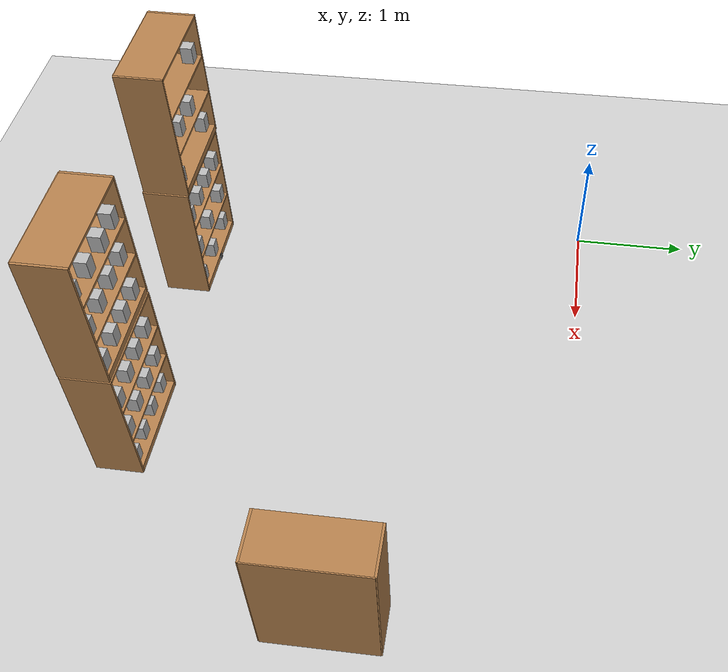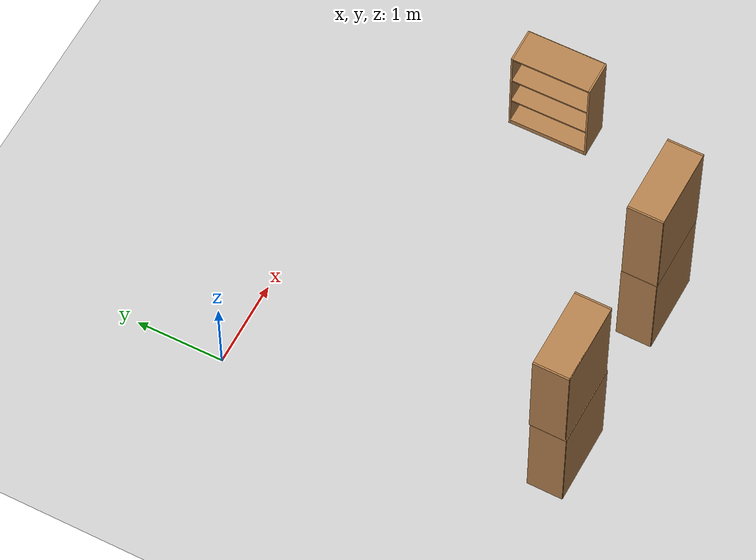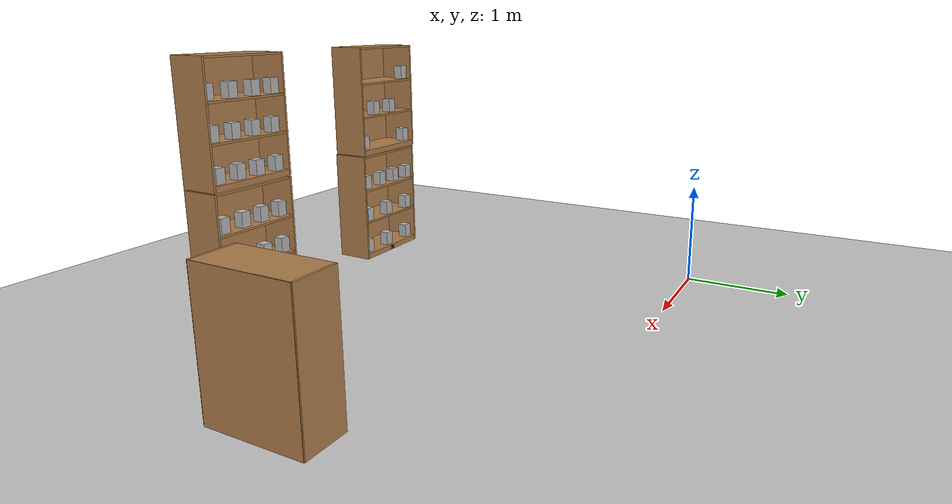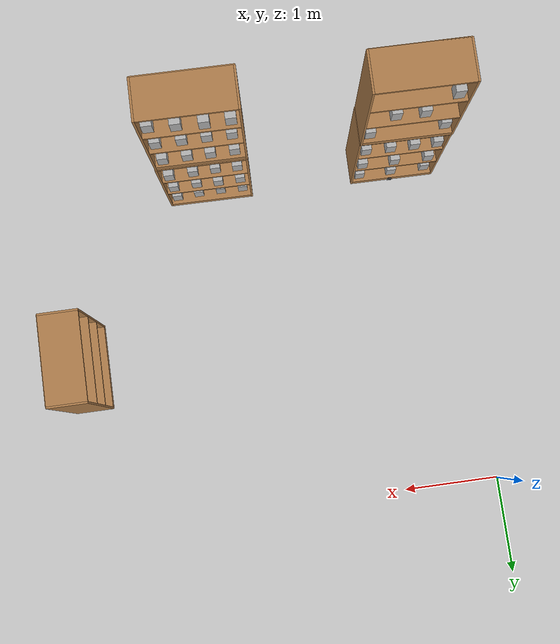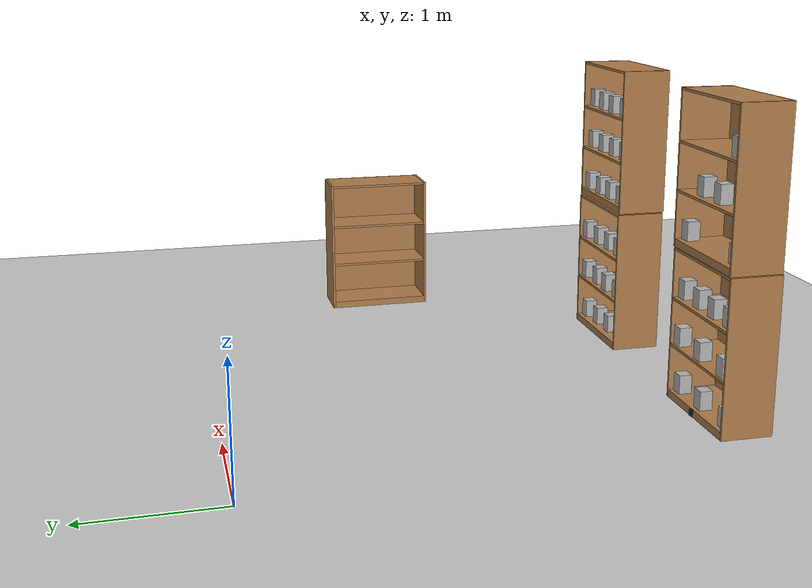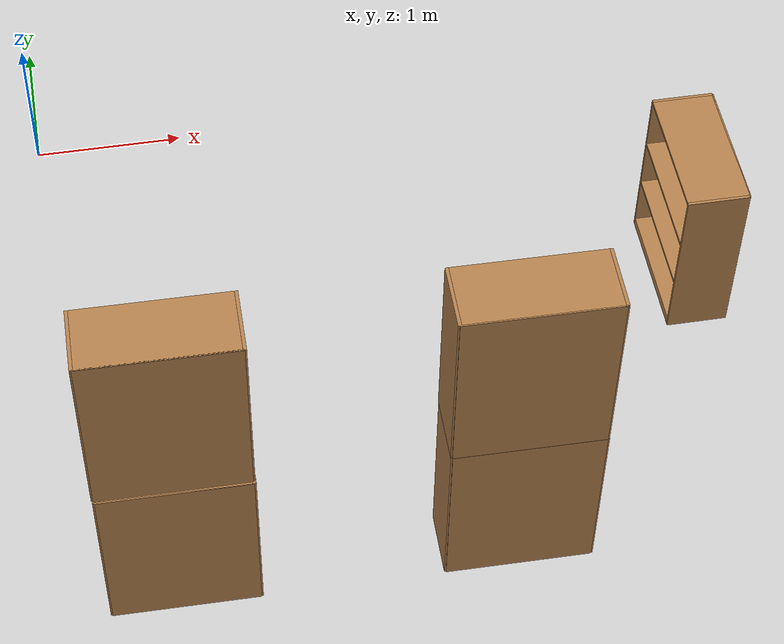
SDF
<sdf version="1.7">
 <world name="default">
  <model name="ground_plane">
   <static>1</static>
   <link name="link">
    <collision name="collision">
     <geometry><plane><normal>0 0 1</normal><size>100 100</size></plane></geometry>
     <surface><friction><ode><mu>100</mu><mu2>50</mu2></ode></friction></surface>
    </collision>
    <visual name="visual">
     <cast_shadows>0</cast_shadows>
     <geometry><plane><normal>0 0 1</normal><size>100 100</size></plane></geometry>
     <material>
      <script><uri>file://media/materials/scripts/gazebo.material</uri><name>Gazebo/Grey</name></script>
     </material>
    </visual>
   </link>
  </model>
  <model name="bookshelf_5">
   <static>1</static>
   <link name="link">
    <inertial><mass>1</mass></inertial>
    <collision name="back">
     <pose>0 0.005 0.6 0 -0 0</pose>
     <geometry><box><size>0.9 0.01 1.2</size></box></geometry>
    </collision>
    <visual name="visual1">
     <pose>0 0.005 0.6 0 -0 0</pose>
     <geometry><box><size>0.9 0.01 1.2</size></box></geometry>
     <material>
      <script><uri>file://media/materials/scripts/gazebo.material</uri><name>Gazebo/Wood</name></script>
     </material>
    </visual>
    <collision name="left_side">
     <pose>0.45 -0.195 0.6 0 -0 0</pose>
     <geometry><box><size>0.02 0.4 1.2</size></box></geometry>
    </collision>
    <visual name="visual2">
     <pose>0.45 -0.195 0.6 0 -0 0</pose>
     <geometry><box><size>0.02 0.4 1.2</size></box></geometry>
     <material>
      <script><uri>file://media/materials/scripts/gazebo.material</uri><name>Gazebo/Wood</name></script>
     </material>
    </visual>
    <collision name="right_side">
     <pose>-0.45 -0.195 0.6 0 -0 0</pose>
     <geometry><box><size>0.02 0.4 1.2</size></box></geometry>
    </collision>
    <visual name="visual3">
     <pose>-0.45 -0.195 0.6 0 -0 0</pose>
     <geometry><box><size>0.02 0.4 1.2</size></box></geometry>
     <material>
      <script><uri>file://media/materials/scripts/gazebo.material</uri><name>Gazebo/Wood</name></script>
     </material>
    </visual>
    <collision name="bottom">
     <pose>0 -0.195 0.03 0 -0 0</pose>
     <geometry><box><size>0.88 0.4 0.06</size></box></geometry>
    </collision>
    <visual name="visual4">
     <pose>0 -0.195 0.03 0 -0 0</pose>
     <geometry><box><size>0.88 0.4 0.06</size></box></geometry>
     <material>
      <script><uri>file://media/materials/scripts/gazebo.material</uri><name>Gazebo/Wood</name></script>
     </material>
    </visual>
    <collision name="top">
     <pose>0 -0.195 1.19 0 -0 0</pose>
     <geometry><box><size>0.88 0.4 0.02</size></box></geometry>
    </collision>
    <visual name="visual5">
     <pose>0 -0.195 1.19 0 -0 0</pose>
     <geometry><box><size>0.88 0.4 0.02</size></box></geometry>
     <material>
      <script><uri>file://media/materials/scripts/gazebo.material</uri><name>Gazebo/Wood</name></script>
     </material>
    </visual>
    <collision name="low_shelf">
     <pose>0 -0.195 0.43 0 -0 0</pose>
     <geometry><box><size>0.88 0.4 0.02</size></box></geometry>
    </collision>
    <visual name="visual6">
     <pose>0 -0.195 0.43 0 -0 0</pose>
     <geometry><box><size>0.88 0.4 0.02</size></box></geometry>
     <material>
      <script><uri>file://media/materials/scripts/gazebo.material</uri><name>Gazebo/Wood</name></script>
     </material>
    </visual>
    <collision name="high_shelf">
     <pose>0 -0.195 0.8 0 -0 0</pose>
     <geometry><box><size>0.88 0.4 0.02</size></box></geometry>
    </collision>
    <visual name="visual7">
     <pose>0 -0.195 0.8 0 -0 0</pose>
     <geometry><box><size>0.88 0.4 0.02</size></box></geometry>
     <material>
      <script><uri>file://media/materials/scripts/gazebo.material</uri><name>Gazebo/Wood</name></script>
     </material>
    </visual>
   </link>
   <pose>2.65151 -3.85953 0 0 -0 3.12955</pose>
  </model>
  <model name="bookshelf_5_clone_0">
   <static>1</static>
   <link name="link">
    <inertial><mass>1</mass></inertial>
    <collision name="back">
     <pose>0 0.005 0.6 0 -0 0</pose>
     <geometry><box><size>0.9 0.01 1.2</size></box></geometry>
    </collision>
    <visual name="visual1">
     <pose>0 0.005 0.6 0 -0 0</pose>
     <geometry><box><size>0.9 0.01 1.2</size></box></geometry>
     <material>
      <script><uri>file://media/materials/scripts/gazebo.material</uri><name>Gazebo/Wood</name></script>
     </material>
    </visual>
    <collision name="left_side">
     <pose>0.45 -0.195 0.6 0 -0 0</pose>
     <geometry><box><size>0.02 0.4 1.2</size></box></geometry>
    </collision>
    <visual name="visual2">
     <pose>0.45 -0.195 0.6 0 -0 0</pose>
     <geometry><box><size>0.02 0.4 1.2</size></box></geometry>
     <material>
      <script><uri>file://media/materials/scripts/gazebo.material</uri><name>Gazebo/Wood</name></script>
     </material>
    </visual>
    <collision name="right_side">
     <pose>-0.45 -0.195 0.6 0 -0 0</pose>
     <geometry><box><size>0.02 0.4 1.2</size></box></geometry>
    </collision>
    <visual name="visual3">
     <pose>-0.45 -0.195 0.6 0 -0 0</pose>
     <geometry><box><size>0.02 0.4 1.2</size></box></geometry>
     <material>
      <script><uri>file://media/materials/scripts/gazebo.material</uri><name>Gazebo/Wood</name></script>
     </material>
    </visual>
    <collision name="bottom">
     <pose>0 -0.195 0.03 0 -0 0</pose>
     <geometry><box><size>0.88 0.4 0.06</size></box></geometry>
    </collision>
    <visual name="visual4">
     <pose>0 -0.195 0.03 0 -0 0</pose>
     <geometry><box><size>0.88 0.4 0.06</size></box></geometry>
     <material>
      <script><uri>file://media/materials/scripts/gazebo.material</uri><name>Gazebo/Wood</name></script>
     </material>
    </visual>
    <collision name="top">
     <pose>0 -0.195 1.19 0 -0 0</pose>
     <geometry><box><size>0.88 0.4 0.02</size></box></geometry>
    </collision>
    <visual name="visual5">
     <pose>0 -0.195 1.19 0 -0 0</pose>
     <geometry><box><size>0.88 0.4 0.02</size></box></geometry>
     <material>
      <script><uri>file://media/materials/scripts/gazebo.material</uri><name>Gazebo/Wood</name></script>
     </material>
    </visual>
    <collision name="low_shelf">
     <pose>0 -0.195 0.43 0 -0 0</pose>
     <geometry><box><size>0.88 0.4 0.02</size></box></geometry>
    </collision>
    <visual name="visual6">
     <pose>0 -0.195 0.43 0 -0 0</pose>
     <geometry><box><size>0.88 0.4 0.02</size></box></geometry>
     <material>
      <script><uri>file://media/materials/scripts/gazebo.material</uri><name>Gazebo/Wood</name></script>
     </material>
    </visual>
    <collision name="high_shelf">
     <pose>0 -0.195 0.8 0 -0 0</pose>
     <geometry><box><size>0.88 0.4 0.02</size></box></geometry>
    </collision>
    <visual name="visual7">
     <pose>0 -0.195 0.8 0 -0 0</pose>
     <geometry><box><size>0.88 0.4 0.02</size></box></geometry>
     <material>
      <script><uri>file://media/materials/scripts/gazebo.material</uri><name>Gazebo/Wood</name></script>
     </material>
    </visual>
   </link>
   <pose>0.624398 -3.83719 0 0 -0 3.12955</pose>
  </model>
  <model name="bookshelf_5_clone">
   <static>1</static>
   <link name="link">
    <inertial><mass>1</mass></inertial>
    <collision name="back">
     <pose>0 0.005 0.6 0 -0 0</pose>
     <geometry><box><size>0.9 0.01 1.2</size></box></geometry>
    </collision>
    <visual name="visual1">
     <pose>0 0.005 0.6 0 -0 0</pose>
     <geometry><box><size>0.9 0.01 1.2</size></box></geometry>
     <material>
      <script><uri>file://media/materials/scripts/gazebo.material</uri><name>Gazebo/Wood</name></script>
     </material>
    </visual>
    <collision name="left_side">
     <pose>0.45 -0.195 0.6 0 -0 0</pose>
     <geometry><box><size>0.02 0.4 1.2</size></box></geometry>
    </collision>
    <visual name="visual2">
     <pose>0.45 -0.195 0.6 0 -0 0</pose>
     <geometry><box><size>0.02 0.4 1.2</size></box></geometry>
     <material>
      <script><uri>file://media/materials/scripts/gazebo.material</uri><name>Gazebo/Wood</name></script>
     </material>
    </visual>
    <collision name="right_side">
     <pose>-0.45 -0.195 0.6 0 -0 0</pose>
     <geometry><box><size>0.02 0.4 1.2</size></box></geometry>
    </collision>
    <visual name="visual3">
     <pose>-0.45 -0.195 0.6 0 -0 0</pose>
     <geometry><box><size>0.02 0.4 1.2</size></box></geometry>
     <material>
      <script><uri>file://media/materials/scripts/gazebo.material</uri><name>Gazebo/Wood</name></script>
     </material>
    </visual>
    <collision name="bottom">
     <pose>0 -0.195 0.03 0 -0 0</pose>
     <geometry><box><size>0.88 0.4 0.06</size></box></geometry>
    </collision>
    <visual name="visual4">
     <pose>0 -0.195 0.03 0 -0 0</pose>
     <geometry><box><size>0.88 0.4 0.06</size></box></geometry>
     <material>
      <script><uri>file://media/materials/scripts/gazebo.material</uri><name>Gazebo/Wood</name></script>
     </material>
    </visual>
    <collision name="top">
     <pose>0 -0.195 1.19 0 -0 0</pose>
     <geometry><box><size>0.88 0.4 0.02</size></box></geometry>
    </collision>
    <visual name="visual5">
     <pose>0 -0.195 1.19 0 -0 0</pose>
     <geometry><box><size>0.88 0.4 0.02</size></box></geometry>
     <material>
      <script><uri>file://media/materials/scripts/gazebo.material</uri><name>Gazebo/Wood</name></script>
     </material>
    </visual>
    <collision name="low_shelf">
     <pose>0 -0.195 0.43 0 -0 0</pose>
     <geometry><box><size>0.88 0.4 0.02</size></box></geometry>
    </collision>
    <visual name="visual6">
     <pose>0 -0.195 0.43 0 -0 0</pose>
     <geometry><box><size>0.88 0.4 0.02</size></box></geometry>
     <material>
      <script><uri>file://media/materials/scripts/gazebo.material</uri><name>Gazebo/Wood</name></script>
     </material>
    </visual>
    <collision name="high_shelf">
     <pose>0 -0.195 0.8 0 -0 0</pose>
     <geometry><box><size>0.88 0.4 0.02</size></box></geometry>
    </collision>
    <visual name="visual7">
     <pose>0 -0.195 0.8 0 -0 0</pose>
     <geometry><box><size>0.88 0.4 0.02</size></box></geometry>
     <material>
      <script><uri>file://media/materials/scripts/gazebo.material</uri><name>Gazebo/Wood</name></script>
     </material>
    </visual>
   </link>
   <pose>2.64795 -3.86432 1.21139 0 -0 3.12955</pose>
  </model>
  <model name="bookshelf_5_clone_clone">
   <static>1</static>
   <link name="link">
    <inertial><mass>1</mass></inertial>
    <collision name="back">
     <pose>0 0.005 0.6 0 -0 0</pose>
     <geometry><box><size>0.9 0.01 1.2</size></box></geometry>
    </collision>
    <visual name="visual1">
     <pose>0 0.005 0.6 0 -0 0</pose>
     <geometry><box><size>0.9 0.01 1.2</size></box></geometry>
     <material>
      <script><uri>file://media/materials/scripts/gazebo.material</uri><name>Gazebo/Wood</name></script>
     </material>
    </visual>
    <collision name="left_side">
     <pose>0.45 -0.195 0.6 0 -0 0</pose>
     <geometry><box><size>0.02 0.4 1.2</size></box></geometry>
    </collision>
    <visual name="visual2">
     <pose>0.45 -0.195 0.6 0 -0 0</pose>
     <geometry><box><size>0.02 0.4 1.2</size></box></geometry>
     <material>
      <script><uri>file://media/materials/scripts/gazebo.material</uri><name>Gazebo/Wood</name></script>
     </material>
    </visual>
    <collision name="right_side">
     <pose>-0.45 -0.195 0.6 0 -0 0</pose>
     <geometry><box><size>0.02 0.4 1.2</size></box></geometry>
    </collision>
    <visual name="visual3">
     <pose>-0.45 -0.195 0.6 0 -0 0</pose>
     <geometry><box><size>0.02 0.4 1.2</size></box></geometry>
     <material>
      <script><uri>file://media/materials/scripts/gazebo.material</uri><name>Gazebo/Wood</name></script>
     </material>
    </visual>
    <collision name="bottom">
     <pose>0 -0.195 0.03 0 -0 0</pose>
     <geometry><box><size>0.88 0.4 0.06</size></box></geometry>
    </collision>
    <visual name="visual4">
     <pose>0 -0.195 0.03 0 -0 0</pose>
     <geometry><box><size>0.88 0.4 0.06</size></box></geometry>
     <material>
      <script><uri>file://media/materials/scripts/gazebo.material</uri><name>Gazebo/Wood</name></script>
     </material>
    </visual>
    <collision name="top">
     <pose>0 -0.195 1.19 0 -0 0</pose>
     <geometry><box><size>0.88 0.4 0.02</size></box></geometry>
    </collision>
    <visual name="visual5">
     <pose>0 -0.195 1.19 0 -0 0</pose>
     <geometry><box><size>0.88 0.4 0.02</size></box></geometry>
     <material>
      <script><uri>file://media/materials/scripts/gazebo.material</uri><name>Gazebo/Wood</name></script>
     </material>
    </visual>
    <collision name="low_shelf">
     <pose>0 -0.195 0.43 0 -0 0</pose>
     <geometry><box><size>0.88 0.4 0.02</size></box></geometry>
    </collision>
    <visual name="visual6">
     <pose>0 -0.195 0.43 0 -0 0</pose>
     <geometry><box><size>0.88 0.4 0.02</size></box></geometry>
     <material>
      <script><uri>file://media/materials/scripts/gazebo.material</uri><name>Gazebo/Wood</name></script>
     </material>
    </visual>
    <collision name="high_shelf">
     <pose>0 -0.195 0.8 0 -0 0</pose>
     <geometry><box><size>0.88 0.4 0.02</size></box></geometry>
    </collision>
    <visual name="visual7">
     <pose>0 -0.195 0.8 0 -0 0</pose>
     <geometry><box><size>0.88 0.4 0.02</size></box></geometry>
     <material>
      <script><uri>file://media/materials/scripts/gazebo.material</uri><name>Gazebo/Wood</name></script>
     </material>
    </visual>
   </link>
   <pose>0.620317 -3.82873 1.21139 0 -0 3.12955</pose>
  </model>
  <model name="bookshelf_4_clone_clone">
   <static>1</static>
   <link name="link">
    <inertial><mass>1</mass></inertial>
    <collision name="back">
     <pose>0 0.005 0.6 0 -0 0</pose>
     <geometry><box><size>0.9 0.01 1.2</size></box></geometry>
    </collision>
    <visual name="visual1">
     <pose>0 0.005 0.6 0 -0 0</pose>
     <geometry><box><size>0.9 0.01 1.2</size></box></geometry>
     <material>
      <script><uri>file://media/materials/scripts/gazebo.material</uri><name>Gazebo/Wood</name></script>
     </material>
    </visual>
    <collision name="left_side">
     <pose>0.45 -0.195 0.6 0 -0 0</pose>
     <geometry><box><size>0.02 0.4 1.2</size></box></geometry>
    </collision>
    <visual name="visual2">
     <pose>0.45 -0.195 0.6 0 -0 0</pose>
     <geometry><box><size>0.02 0.4 1.2</size></box></geometry>
     <material>
      <script><uri>file://media/materials/scripts/gazebo.material</uri><name>Gazebo/Wood</name></script>
     </material>
    </visual>
    <collision name="right_side">
     <pose>-0.45 -0.195 0.6 0 -0 0</pose>
     <geometry><box><size>0.02 0.4 1.2</size></box></geometry>
    </collision>
    <visual name="visual3">
     <pose>-0.45 -0.195 0.6 0 -0 0</pose>
     <geometry><box><size>0.02 0.4 1.2</size></box></geometry>
     <material>
      <script><uri>file://media/materials/scripts/gazebo.material</uri><name>Gazebo/Wood</name></script>
     </material>
    </visual>
    <collision name="bottom">
     <pose>0 -0.195 0.03 0 -0 0</pose>
     <geometry><box><size>0.88 0.4 0.06</size></box></geometry>
    </collision>
    <visual name="visual4">
     <pose>0 -0.195 0.03 0 -0 0</pose>
     <geometry><box><size>0.88 0.4 0.06</size></box></geometry>
     <material>
      <script><uri>file://media/materials/scripts/gazebo.material</uri><name>Gazebo/Wood</name></script>
     </material>
    </visual>
    <collision name="top">
     <pose>0 -0.195 1.19 0 -0 0</pose>
     <geometry><box><size>0.88 0.4 0.02</size></box></geometry>
    </collision>
    <visual name="visual5">
     <pose>0 -0.195 1.19 0 -0 0</pose>
     <geometry><box><size>0.88 0.4 0.02</size></box></geometry>
     <material>
      <script><uri>file://media/materials/scripts/gazebo.material</uri><name>Gazebo/Wood</name></script>
     </material>
    </visual>
    <collision name="low_shelf">
     <pose>0 -0.195 0.43 0 -0 0</pose>
     <geometry><box><size>0.88 0.4 0.02</size></box></geometry>
    </collision>
    <visual name="visual6">
     <pose>0 -0.195 0.43 0 -0 0</pose>
     <geometry><box><size>0.88 0.4 0.02</size></box></geometry>
     <material>
      <script><uri>file://media/materials/scripts/gazebo.material</uri><name>Gazebo/Wood</name></script>
     </material>
    </visual>
    <collision name="high_shelf">
     <pose>0 -0.195 0.8 0 -0 0</pose>
     <geometry><box><size>0.88 0.4 0.02</size></box></geometry>
    </collision>
    <visual name="visual7">
     <pose>0 -0.195 0.8 0 -0 0</pose>
     <geometry><box><size>0.88 0.4 0.02</size></box></geometry>
     <material>
      <script><uri>file://media/materials/scripts/gazebo.material</uri><name>Gazebo/Wood</name></script>
     </material>
    </visual>
   </link>
   <pose>4.40573 -1.76165 0 0 0 -1.5727</pose>
  </model>
  <model name="tea_box_clone">
   <link name="link">
    <pose>0 0 0.075 0 -0 0</pose>
    <visual name="visual">
     <geometry><box><size>0.1 0.1 0.15</size></box></geometry>
     <material>
      <script>
       <uri>model://tea_box/materials/scripts</uri>
       <uri>model://tea_box/materials/textures</uri>
       <name>tea_pat</name>
      </script>
     </material>
    </visual>
    <collision name="collision"><geometry><box><size>0.1 0.1 0.15</size></box></geometry></collision>
   </link>
   <static>1</static>
   <pose>2.78357 -3.56921 0.061312 0 -0 1.56458</pose>
  </model>
  <model name="tea_box_clone_0">
   <link name="link">
    <pose>0 0 0.075 0 -0 0</pose>
    <visual name="visual">
     <geometry><box><size>0.1 0.1 0.15</size></box></geometry>
     <material>
      <script>
       <uri>model://tea_box/materials/scripts</uri>
       <uri>model://tea_box/materials/textures</uri>
       <name>tea_pat</name>
      </script>
     </material>
    </visual>
    <collision name="collision"><geometry><box><size>0.1 0.1 0.15</size></box></geometry></collision>
   </link>
   <static>1</static>
   <pose>2.54063 -3.57186 0.061312 0 -0 1.56458</pose>
  </model>
  <model name="tea_box_clone_1">
   <link name="link">
    <pose>0 0 0.075 0 -0 0</pose>
    <visual name="visual">
     <geometry><box><size>0.1 0.1 0.15</size></box></geometry>
     <material>
      <script>
       <uri>model://tea_box/materials/scripts</uri>
       <uri>model://tea_box/materials/textures</uri>
       <name>tea_pat</name>
      </script>
     </material>
    </visual>
    <collision name="collision"><geometry><box><size>0.1 0.1 0.15</size></box></geometry></collision>
   </link>
   <static>1</static>
   <pose>2.29718 -3.56584 0.061312 0 -0 1.56458</pose>
  </model>
  <model name="tea_box_clone_clone_0">
   <link name="link">
    <pose>0 0 0.075 0 -0 0</pose>
    <visual name="visual">
     <geometry><box><size>0.1 0.1 0.15</size></box></geometry>
     <material>
      <script>
       <uri>model://tea_box/materials/scripts</uri>
       <uri>model://tea_box/materials/textures</uri>
       <name>tea_pat</name>
      </script>
     </material>
    </visual>
    <collision name="collision"><geometry><box><size>0.1 0.1 0.15</size></box></geometry></collision>
   </link>
   <static>1</static>
   <pose>3.02264 -3.55748 0.061312 0 -0 1.56458</pose>
  </model>
  <model name="tea_box_clone_clone_clone">
   <link name="link">
    <pose>0 0 0.075 0 -0 0</pose>
    <visual name="visual">
     <geometry><box><size>0.1 0.1 0.15</size></box></geometry>
     <material>
      <script>
       <uri>model://tea_box/materials/scripts</uri>
       <uri>model://tea_box/materials/textures</uri>
       <name>tea_pat</name>
      </script>
     </material>
    </visual>
    <collision name="collision"><geometry><box><size>0.1 0.1 0.15</size></box></geometry></collision>
   </link>
   <static>1</static>
   <pose>2.77129 -3.5466 0.44421 0 -0 1.56458</pose>
  </model>
  <model name="tea_box_clone_clone_clone_clone_0">
   <link name="link">
    <pose>0 0 0.075 0 -0 0</pose>
    <visual name="visual">
     <geometry><box><size>0.1 0.1 0.15</size></box></geometry>
     <material>
      <script>
       <uri>model://tea_box/materials/scripts</uri>
       <uri>model://tea_box/materials/textures</uri>
       <name>tea_pat</name>
      </script>
     </material>
    </visual>
    <collision name="collision"><geometry><box><size>0.1 0.1 0.15</size></box></geometry></collision>
   </link>
   <static>1</static>
   <pose>2.5398 -3.53663 0.44421 0 -0 1.56458</pose>
  </model>
  <model name="tea_box_clone_clone_clone_clone_1">
   <link name="link">
    <pose>0 0 0.075 0 -0 0</pose>
    <visual name="visual">
     <geometry><box><size>0.1 0.1 0.15</size></box></geometry>
     <material>
      <script>
       <uri>model://tea_box/materials/scripts</uri>
       <uri>model://tea_box/materials/textures</uri>
       <name>tea_pat</name>
      </script>
     </material>
    </visual>
    <collision name="collision"><geometry><box><size>0.1 0.1 0.15</size></box></geometry></collision>
   </link>
   <static>1</static>
   <pose>2.30524 -3.54047 0.44421 0 -0 1.56458</pose>
  </model>
  <model name="tea_box_clone_1_clone">
   <link name="link">
    <pose>0 0 0.075 0 -0 0</pose>
    <visual name="visual">
     <geometry><box><size>0.1 0.1 0.15</size></box></geometry>
     <material>
      <script>
       <uri>model://tea_box/materials/scripts</uri>
       <uri>model://tea_box/materials/textures</uri>
       <name>tea_pat</name>
      </script>
     </material>
    </visual>
    <collision name="collision"><geometry><box><size>0.1 0.1 0.15</size></box></geometry></collision>
   </link>
   <static>1</static>
   <pose>0.989843 -3.52917 0.061312 0 -0 1.56458</pose>
  </model>
  <model name="tea_box_clone_1_clone_0">
   <link name="link">
    <pose>0 0 0.075 0 -0 0</pose>
    <visual name="visual">
     <geometry><box><size>0.1 0.1 0.15</size></box></geometry>
     <material>
      <script>
       <uri>model://tea_box/materials/scripts</uri>
       <uri>model://tea_box/materials/textures</uri>
       <name>tea_pat</name>
      </script>
     </material>
    </visual>
    <collision name="collision"><geometry><box><size>0.1 0.1 0.15</size></box></geometry></collision>
   </link>
   <static>1</static>
   <pose>0.640874 -3.52693 0.061312 0 -0 1.56458</pose>
  </model>
  <model name="tea_box_clone_1_clone_1">
   <link name="link">
    <pose>0 0 0.075 0 -0 0</pose>
    <visual name="visual">
     <geometry><box><size>0.1 0.1 0.15</size></box></geometry>
     <material>
      <script>
       <uri>model://tea_box/materials/scripts</uri>
       <uri>model://tea_box/materials/textures</uri>
       <name>tea_pat</name>
      </script>
     </material>
    </visual>
    <collision name="collision"><geometry><box><size>0.1 0.1 0.15</size></box></geometry></collision>
   </link>
   <static>1</static>
   <pose>0.268111 -3.52884 0.061312 0 -0 1.56458</pose>
  </model>
  <model name="tea_box_clone_clone_clone_clone_1_clone">
   <link name="link">
    <pose>0 0 0.075 0 -0 0</pose>
    <visual name="visual">
     <geometry><box><size>0.1 0.1 0.15</size></box></geometry>
     <material>
      <script>
       <uri>model://tea_box/materials/scripts</uri>
       <uri>model://tea_box/materials/textures</uri>
       <name>tea_pat</name>
      </script>
     </material>
    </visual>
    <collision name="collision"><geometry><box><size>0.1 0.1 0.15</size></box></geometry></collision>
   </link>
   <static>1</static>
   <pose>0.992767 -3.51094 0.44421 0 -0 1.56458</pose>
  </model>
  <model name="tea_box_clone_clone_clone_clone_1_clone_0">
   <link name="link">
    <pose>0 0 0.075 0 -0 0</pose>
    <visual name="visual">
     <geometry><box><size>0.1 0.1 0.15</size></box></geometry>
     <material>
      <script>
       <uri>model://tea_box/materials/scripts</uri>
       <uri>model://tea_box/materials/textures</uri>
       <name>tea_pat</name>
      </script>
     </material>
    </visual>
    <collision name="collision"><geometry><box><size>0.1 0.1 0.15</size></box></geometry></collision>
   </link>
   <static>1</static>
   <pose>0.650303 -3.5064 0.44421 0 -0 1.56458</pose>
  </model>
  <model name="tea_box_clone_clone_clone_clone_1_clone_1">
   <link name="link">
    <pose>0 0 0.075 0 -0 0</pose>
    <visual name="visual">
     <geometry><box><size>0.1 0.1 0.15</size></box></geometry>
     <material>
      <script>
       <uri>model://tea_box/materials/scripts</uri>
       <uri>model://tea_box/materials/textures</uri>
       <name>tea_pat</name>
      </script>
     </material>
    </visual>
    <collision name="collision"><geometry><box><size>0.1 0.1 0.15</size></box></geometry></collision>
   </link>
   <static>1</static>
   <pose>0.286966 -3.50157 0.44421 0 -0 1.56458</pose>
  </model>
  <model name="tea_box_clone_clone_clone_clone_clone">
   <link name="link">
    <pose>0 0 0.075 0 -0 0</pose>
    <visual name="visual">
     <geometry><box><size>0.1 0.1 0.15</size></box></geometry>
     <material>
      <script>
       <uri>model://tea_box/materials/scripts</uri>
       <uri>model://tea_box/materials/textures</uri>
       <name>tea_pat</name>
      </script>
     </material>
    </visual>
    <collision name="collision"><geometry><box><size>0.1 0.1 0.15</size></box></geometry></collision>
   </link>
   <static>1</static>
   <pose>2.7673 -3.54307 0.818791 0 -0 1.56458</pose>
  </model>
  <model name="tea_box_clone_clone_clone_clone_clone_0">
   <link name="link">
    <pose>0 0 0.075 0 -0 0</pose>
    <visual name="visual">
     <geometry><box><size>0.1 0.1 0.15</size></box></geometry>
     <material>
      <script>
       <uri>model://tea_box/materials/scripts</uri>
       <uri>model://tea_box/materials/textures</uri>
       <name>tea_pat</name>
      </script>
     </material>
    </visual>
    <collision name="collision"><geometry><box><size>0.1 0.1 0.15</size></box></geometry></collision>
   </link>
   <static>1</static>
   <pose>2.77126 -3.5486 1.27537 0 -0 1.56458</pose>
  </model>
  <model name="tea_box_clone_clone_clone_clone_clone_1">
   <link name="link">
    <pose>0 0 0.075 0 -0 0</pose>
    <visual name="visual">
     <geometry><box><size>0.1 0.1 0.15</size></box></geometry>
     <material>
      <script>
       <uri>model://tea_box/materials/scripts</uri>
       <uri>model://tea_box/materials/textures</uri>
       <name>tea_pat</name>
      </script>
     </material>
    </visual>
    <collision name="collision"><geometry><box><size>0.1 0.1 0.15</size></box></geometry></collision>
   </link>
   <static>1</static>
   <pose>2.77651 -3.56431 1.65259 0 -0 1.56458</pose>
  </model>
  <model name="tea_box_clone_clone_clone_clone_clone_2">
   <link name="link">
    <pose>0 0 0.075 0 -0 0</pose>
    <visual name="visual">
     <geometry><box><size>0.1 0.1 0.15</size></box></geometry>
     <material>
      <script>
       <uri>model://tea_box/materials/scripts</uri>
       <uri>model://tea_box/materials/textures</uri>
       <name>tea_pat</name>
      </script>
     </material>
    </visual>
    <collision name="collision"><geometry><box><size>0.1 0.1 0.15</size></box></geometry></collision>
   </link>
   <static>1</static>
   <pose>2.78166 -3.55685 2.02413 0 -0 1.56458</pose>
  </model>
  <model name="tea_box_clone_clone_clone_clone">
   <link name="link">
    <pose>0 0 0.075 0 -0 0</pose>
    <visual name="visual">
     <geometry><box><size>0.1 0.1 0.15</size></box></geometry>
     <material>
      <script>
       <uri>model://tea_box/materials/scripts</uri>
       <uri>model://tea_box/materials/textures</uri>
       <name>tea_pat</name>
      </script>
     </material>
    </visual>
    <collision name="collision"><geometry><box><size>0.1 0.1 0.15</size></box></geometry></collision>
   </link>
   <static>1</static>
   <pose>3.01591 -3.53853 0.44421 0 -0 1.56458</pose>
  </model>
  <model name="tea_box_clone_clone_clone_clone_clone_clone">
   <link name="link">
    <pose>0 0 0.075 0 -0 0</pose>
    <visual name="visual">
     <geometry><box><size>0.1 0.1 0.15</size></box></geometry>
     <material>
      <script>
       <uri>model://tea_box/materials/scripts</uri>
       <uri>model://tea_box/materials/textures</uri>
       <name>tea_pat</name>
      </script>
     </material>
    </visual>
    <collision name="collision"><geometry><box><size>0.1 0.1 0.15</size></box></geometry></collision>
   </link>
   <static>1</static>
   <pose>3.01389 -3.535 0.818791 0 -0 1.56458</pose>
  </model>
  <model name="tea_box_clone_clone_clone_clone_clone_clone_0">
   <link name="link">
    <pose>0 0 0.075 0 -0 0</pose>
    <visual name="visual">
     <geometry><box><size>0.1 0.1 0.15</size></box></geometry>
     <material>
      <script>
       <uri>model://tea_box/materials/scripts</uri>
       <uri>model://tea_box/materials/textures</uri>
       <name>tea_pat</name>
      </script>
     </material>
    </visual>
    <collision name="collision"><geometry><box><size>0.1 0.1 0.15</size></box></geometry></collision>
   </link>
   <static>1</static>
   <pose>2.53738 -3.54794 0.818791 0 -0 1.56458</pose>
  </model>
  <model name="tea_box_clone_clone_clone_clone_clone_clone_1">
   <link name="link">
    <pose>0 0 0.075 0 -0 0</pose>
    <visual name="visual">
     <geometry><box><size>0.1 0.1 0.15</size></box></geometry>
     <material>
      <script>
       <uri>model://tea_box/materials/scripts</uri>
       <uri>model://tea_box/materials/textures</uri>
       <name>tea_pat</name>
      </script>
     </material>
    </visual>
    <collision name="collision"><geometry><box><size>0.1 0.1 0.15</size></box></geometry></collision>
   </link>
   <static>1</static>
   <pose>2.31331 -3.54292 0.818791 0 -0 1.56458</pose>
  </model>
  <model name="tea_box_clone_clone_clone_clone_clone_0_clone">
   <link name="link">
    <pose>0 0 0.075 0 -0 0</pose>
    <visual name="visual">
     <geometry><box><size>0.1 0.1 0.15</size></box></geometry>
     <material>
      <script>
       <uri>model://tea_box/materials/scripts</uri>
       <uri>model://tea_box/materials/textures</uri>
       <name>tea_pat</name>
      </script>
     </material>
    </visual>
    <collision name="collision"><geometry><box><size>0.1 0.1 0.15</size></box></geometry></collision>
   </link>
   <static>1</static>
   <pose>3.01059 -3.54439 1.27537 0 -0 1.56458</pose>
  </model>
  <model name="tea_box_clone_clone_clone_clone_clone_0_clone_0">
   <link name="link">
    <pose>0 0 0.075 0 -0 0</pose>
    <visual name="visual">
     <geometry><box><size>0.1 0.1 0.15</size></box></geometry>
     <material>
      <script>
       <uri>model://tea_box/materials/scripts</uri>
       <uri>model://tea_box/materials/textures</uri>
       <name>tea_pat</name>
      </script>
     </material>
    </visual>
    <collision name="collision"><geometry><box><size>0.1 0.1 0.15</size></box></geometry></collision>
   </link>
   <static>1</static>
   <pose>2.54435 -3.54516 1.27537 0 -0 1.56458</pose>
  </model>
  <model name="tea_box_clone_clone_clone_clone_clone_0_clone_1">
   <link name="link">
    <pose>0 0 0.075 0 -0 0</pose>
    <visual name="visual">
     <geometry><box><size>0.1 0.1 0.15</size></box></geometry>
     <material>
      <script>
       <uri>model://tea_box/materials/scripts</uri>
       <uri>model://tea_box/materials/textures</uri>
       <name>tea_pat</name>
      </script>
     </material>
    </visual>
    <collision name="collision"><geometry><box><size>0.1 0.1 0.15</size></box></geometry></collision>
   </link>
   <static>1</static>
   <pose>2.30978 -3.54552 1.27537 0 -0 1.56458</pose>
  </model>
  <model name="tea_box_clone_clone_clone_clone_clone_1_clone">
   <link name="link">
    <pose>0 0 0.075 0 -0 0</pose>
    <visual name="visual">
     <geometry><box><size>0.1 0.1 0.15</size></box></geometry>
     <material>
      <script>
       <uri>model://tea_box/materials/scripts</uri>
       <uri>model://tea_box/materials/textures</uri>
       <name>tea_pat</name>
      </script>
     </material>
    </visual>
    <collision name="collision"><geometry><box><size>0.1 0.1 0.15</size></box></geometry></collision>
   </link>
   <static>1</static>
   <pose>3.02011 -3.56417 1.65259 0 -0 1.56458</pose>
  </model>
  <model name="tea_box_clone_clone_clone_clone_clone_1_clone_0">
   <link name="link">
    <pose>0 0 0.075 0 -0 0</pose>
    <visual name="visual">
     <geometry><box><size>0.1 0.1 0.15</size></box></geometry>
     <material>
      <script>
       <uri>model://tea_box/materials/scripts</uri>
       <uri>model://tea_box/materials/textures</uri>
       <name>tea_pat</name>
      </script>
     </material>
    </visual>
    <collision name="collision"><geometry><box><size>0.1 0.1 0.15</size></box></geometry></collision>
   </link>
   <static>1</static>
   <pose>2.54258 -3.56459 1.65259 0 -0 1.56458</pose>
  </model>
  <model name="tea_box_clone_clone_clone_clone_clone_1_clone_1">
   <link name="link">
    <pose>0 0 0.075 0 -0 0</pose>
    <visual name="visual">
     <geometry><box><size>0.1 0.1 0.15</size></box></geometry>
     <material>
      <script>
       <uri>model://tea_box/materials/scripts</uri>
       <uri>model://tea_box/materials/textures</uri>
       <name>tea_pat</name>
      </script>
     </material>
    </visual>
    <collision name="collision"><geometry><box><size>0.1 0.1 0.15</size></box></geometry></collision>
   </link>
   <static>1</static>
   <pose>2.30777 -3.56093 1.65259 0 -0 1.56458</pose>
  </model>
  <model name="tea_box_clone_clone_clone_clone_clone_2_clone">
   <link name="link">
    <pose>0 0 0.075 0 -0 0</pose>
    <visual name="visual">
     <geometry><box><size>0.1 0.1 0.15</size></box></geometry>
     <material>
      <script>
       <uri>model://tea_box/materials/scripts</uri>
       <uri>model://tea_box/materials/textures</uri>
       <name>tea_pat</name>
      </script>
     </material>
    </visual>
    <collision name="collision"><geometry><box><size>0.1 0.1 0.15</size></box></geometry></collision>
   </link>
   <static>1</static>
   <pose>3.02973 -3.57472 2.02413 0 -0 1.56458</pose>
  </model>
  <model name="tea_box_clone_clone_clone_clone_clone_2_clone_0">
   <link name="link">
    <pose>0 0 0.075 0 -0 0</pose>
    <visual name="visual">
     <geometry><box><size>0.1 0.1 0.15</size></box></geometry>
     <material>
      <script>
       <uri>model://tea_box/materials/scripts</uri>
       <uri>model://tea_box/materials/textures</uri>
       <name>tea_pat</name>
      </script>
     </material>
    </visual>
    <collision name="collision"><geometry><box><size>0.1 0.1 0.15</size></box></geometry></collision>
   </link>
   <static>1</static>
   <pose>2.53109 -3.54207 2.02413 0 -0 1.56458</pose>
  </model>
  <model name="tea_box_clone_clone_clone_clone_clone_2_clone_1">
   <link name="link">
    <pose>0 0 0.075 0 -0 0</pose>
    <visual name="visual">
     <geometry><box><size>0.1 0.1 0.15</size></box></geometry>
     <material>
      <script>
       <uri>model://tea_box/materials/scripts</uri>
       <uri>model://tea_box/materials/textures</uri>
       <name>tea_pat</name>
      </script>
     </material>
    </visual>
    <collision name="collision"><geometry><box><size>0.1 0.1 0.15</size></box></geometry></collision>
   </link>
   <static>1</static>
   <pose>2.29351 -3.54558 2.02413 0 -0 1.56458</pose>
  </model>
  <model name="tea_box_clone_clone_clone_clone_clone_clone_1_clone">
   <link name="link">
    <pose>0 0 0.075 0 -0 0</pose>
    <visual name="visual">
     <geometry><box><size>0.1 0.1 0.15</size></box></geometry>
     <material>
      <script>
       <uri>model://tea_box/materials/scripts</uri>
       <uri>model://tea_box/materials/textures</uri>
       <name>tea_pat</name>
      </script>
     </material>
    </visual>
    <collision name="collision"><geometry><box><size>0.1 0.1 0.15</size></box></geometry></collision>
   </link>
   <static>1</static>
   <pose>0.98809 -3.52543 0.818791 0 -0 1.56458</pose>
  </model>
  <model name="tea_box_clone_clone_clone_clone_clone_clone_1_clone_0">
   <link name="link">
    <pose>0 0 0.075 0 -0 0</pose>
    <visual name="visual">
     <geometry><box><size>0.1 0.1 0.15</size></box></geometry>
     <material>
      <script>
       <uri>model://tea_box/materials/scripts</uri>
       <uri>model://tea_box/materials/textures</uri>
       <name>tea_pat</name>
      </script>
     </material>
    </visual>
    <collision name="collision"><geometry><box><size>0.1 0.1 0.15</size></box></geometry></collision>
   </link>
   <static>1</static>
   <pose>0.735127 -3.52062 0.818791 0 -0 1.56458</pose>
  </model>
  <model name="tea_box_clone_clone_clone_clone_clone_clone_1_clone_1">
   <link name="link">
    <pose>0 0 0.075 0 -0 0</pose>
    <visual name="visual">
     <geometry><box><size>0.1 0.1 0.15</size></box></geometry>
     <material>
      <script>
       <uri>model://tea_box/materials/scripts</uri>
       <uri>model://tea_box/materials/textures</uri>
       <name>tea_pat</name>
      </script>
     </material>
    </visual>
    <collision name="collision"><geometry><box><size>0.1 0.1 0.15</size></box></geometry></collision>
   </link>
   <static>1</static>
   <pose>0.490744 -3.51598 0.818791 0 -0 1.56458</pose>
  </model>
  <model name="tea_box_clone_clone_clone_clone_clone_clone_1_clone_2">
   <link name="link">
    <pose>0 0 0.075 0 -0 0</pose>
    <visual name="visual">
     <geometry><box><size>0.1 0.1 0.15</size></box></geometry>
     <material>
      <script>
       <uri>model://tea_box/materials/scripts</uri>
       <uri>model://tea_box/materials/textures</uri>
       <name>tea_pat</name>
      </script>
     </material>
    </visual>
    <collision name="collision"><geometry><box><size>0.1 0.1 0.15</size></box></geometry></collision>
   </link>
   <static>1</static>
   <pose>0.250646 -3.51141 0.818791 0 -0 1.56458</pose>
  </model>
  <model name="tea_box_clone_clone_clone_clone_clone_0_clone_1_clone">
   <link name="link">
    <pose>0 0 0.075 0 -0 0</pose>
    <visual name="visual">
     <geometry><box><size>0.1 0.1 0.15</size></box></geometry>
     <material>
      <script>
       <uri>model://tea_box/materials/scripts</uri>
       <uri>model://tea_box/materials/textures</uri>
       <name>tea_pat</name>
      </script>
     </material>
    </visual>
    <collision name="collision"><geometry><box><size>0.1 0.1 0.15</size></box></geometry></collision>
   </link>
   <static>1</static>
   <pose>0.990908 -3.52814 1.27537 0 -0 1.56458</pose>
  </model>
  <model name="tea_box_clone_clone_clone_clone_clone_0_clone_1_clone_0">
   <link name="link">
    <pose>0 0 0.075 0 -0 0</pose>
    <visual name="visual">
     <geometry><box><size>0.1 0.1 0.15</size></box></geometry>
     <material>
      <script>
       <uri>model://tea_box/materials/scripts</uri>
       <uri>model://tea_box/materials/textures</uri>
       <name>tea_pat</name>
      </script>
     </material>
    </visual>
    <collision name="collision"><geometry><box><size>0.1 0.1 0.15</size></box></geometry></collision>
   </link>
   <static>1</static>
   <pose>0.253638 -3.52768 1.27537 0 -0 1.56458</pose>
  </model>
  <model name="tea_box_clone_clone_clone_clone_clone_1_clone_1_clone">
   <link name="link">
    <pose>0 0 0.075 0 -0 0</pose>
    <visual name="visual">
     <geometry><box><size>0.1 0.1 0.15</size></box></geometry>
     <material>
      <script>
       <uri>model://tea_box/materials/scripts</uri>
       <uri>model://tea_box/materials/textures</uri>
       <name>tea_pat</name>
      </script>
     </material>
    </visual>
    <collision name="collision"><geometry><box><size>0.1 0.1 0.15</size></box></geometry></collision>
   </link>
   <static>1</static>
   <pose>0.78177 -3.53067 1.65259 0 -0 1.56458</pose>
  </model>
  <model name="tea_box_clone_clone_clone_clone_clone_1_clone_1_clone_0">
   <link name="link">
    <pose>0 0 0.075 0 -0 0</pose>
    <visual name="visual">
     <geometry><box><size>0.1 0.1 0.15</size></box></geometry>
     <material>
      <script>
       <uri>model://tea_box/materials/scripts</uri>
       <uri>model://tea_box/materials/textures</uri>
       <name>tea_pat</name>
      </script>
     </material>
    </visual>
    <collision name="collision"><geometry><box><size>0.1 0.1 0.15</size></box></geometry></collision>
   </link>
   <static>1</static>
   <pose>0.507255 -3.5221 1.65259 0 -0 1.56458</pose>
  </model>
  <model name="tea_box_clone_clone_clone_clone_clone_2_clone_1_clone">
   <link name="link">
    <pose>0 0 0.075 0 -0 0</pose>
    <visual name="visual">
     <geometry><box><size>0.1 0.1 0.15</size></box></geometry>
     <material>
      <script>
       <uri>model://tea_box/materials/scripts</uri>
       <uri>model://tea_box/materials/textures</uri>
       <name>tea_pat</name>
      </script>
     </material>
    </visual>
    <collision name="collision"><geometry><box><size>0.1 0.1 0.15</size></box></geometry></collision>
   </link>
   <static>1</static>
   <pose>0.269475 -3.50976 2.02413 0 -0 1.56458</pose>
  </model>
  <model name="blackcube_clone">
   <static>1</static>
   <link name="link">
    <pose>0 0 0.03 0 -0 0</pose>
    <collision name="collision"><geometry><box><size>0.1 0.1 0.1</size></box></geometry></collision>
    <visual name="visual">
     <geometry><box><size>0.05 0.01 0.05</size></box></geometry>
     <material>
      <script><uri>file://media/materials/scripts/gazebo.material</uri><name>Gazebo/Black</name></script>
     </material>
    </visual>
   </link>
   <pose>0.651256 -3.43679 0 0 -0 0</pose>
  </model>
 </world>
</sdf>
